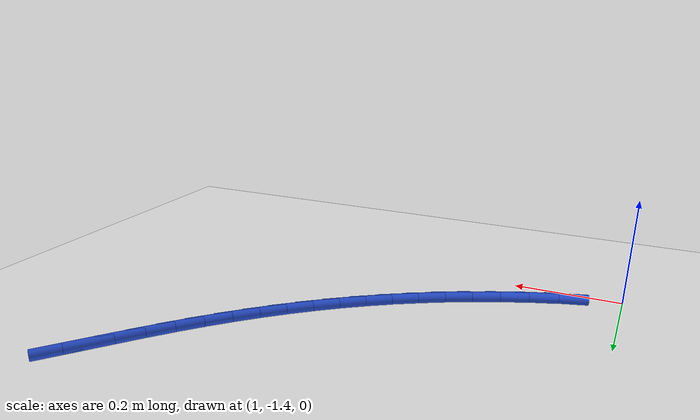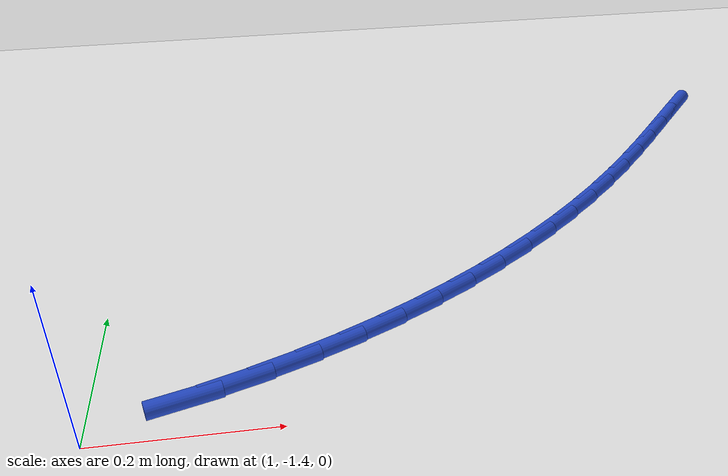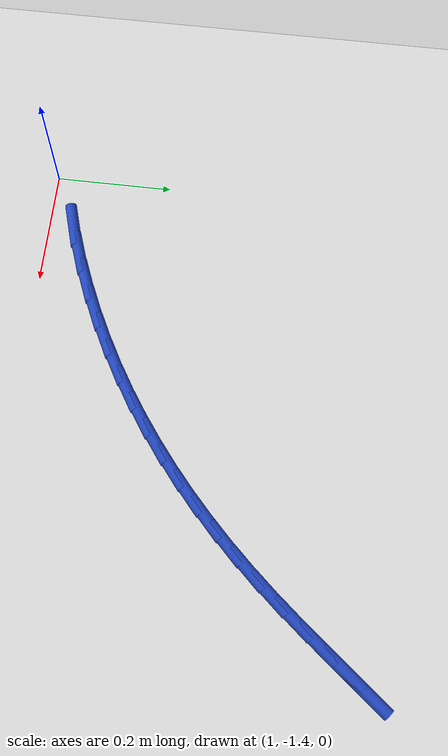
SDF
<sdf version="1.6">
 <world name="default">
  <model name="ground_plane">
   <static>1</static>
   <link name="link">
    <collision name="collision">
     <geometry><plane><normal>0 0 1</normal><size>100 100</size></plane></geometry>
     <surface><friction><ode><mu>100</mu><mu2>50</mu2></ode></friction></surface>
    </collision>
    <visual name="visual">
     <cast_shadows>0</cast_shadows>
     <geometry><plane><normal>0 0 1</normal><size>100 100</size></plane></geometry>
     <material>
      <script><uri>file://media/materials/scripts/gazebo.material</uri><name>Gazebo/WhiteGlow</name></script>
     </material>
    </visual>
   </link>
  </model>
  <model name="line">
   <link name="link_93">
    <pose>1.811123071716449 -0.8066129584355205 0.01 0 1.57 0.8965889323679145</pose>
    <collision name="collision">
     <geometry><cylinder><radius>0.01</radius><length>0.08</length></cylinder></geometry>
    </collision>
    <visual name="visual">
     <material>
      <script><name>Gazebo/Blue</name><uri>file://media/materials/scripts/gazebo.material</uri></script>
     </material>
     <geometry><cylinder><radius>0.01</radius><length>0.08</length></cylinder></geometry>
    </visual>
   </link>
   <link name="link_94">
    <pose>1.7796793295492397 -0.8459606552341223 0.01 0 1.57 0.8977207104698512</pose>
    <collision name="collision">
     <geometry><cylinder><radius>0.01</radius><length>0.08</length></cylinder></geometry>
    </collision>
    <visual name="visual">
     <material>
      <script><name>Gazebo/Blue</name><uri>file://media/materials/scripts/gazebo.material</uri></script>
     </material>
     <geometry><cylinder><radius>0.01</radius><length>0.08</length></cylinder></geometry>
    </visual>
   </link>
   <link name="link_95">
    <pose>1.7483244885506108 -0.8852882892945279 0.01 0 1.57 0.8882766905712431</pose>
    <collision name="collision">
     <geometry><cylinder><radius>0.01</radius><length>0.08</length></cylinder></geometry>
    </collision>
    <visual name="visual">
     <material>
      <script><name>Gazebo/Blue</name><uri>file://media/materials/scripts/gazebo.material</uri></script>
     </material>
     <geometry><cylinder><radius>0.01</radius><length>0.08</length></cylinder></geometry>
    </visual>
   </link>
   <link name="link_96">
    <pose>1.7167016635018457 -0.9241925433749459 0.01 0 1.57 0.8681086555003331</pose>
    <collision name="collision">
     <geometry><cylinder><radius>0.01</radius><length>0.08</length></cylinder></geometry>
    </collision>
    <visual name="visual">
     <material>
      <script><name>Gazebo/Blue</name><uri>file://media/materials/scripts/gazebo.material</uri></script>
     </material>
     <geometry><cylinder><radius>0.01</radius><length>0.08</length></cylinder></geometry>
    </visual>
   </link>
   <link name="link_97">
    <pose>1.6844540009546607 -0.9622701433061315 0.01 0 1.57 0.8389535748512726</pose>
    <collision name="collision">
     <geometry><cylinder><radius>0.01</radius><length>0.08</length></cylinder></geometry>
    </collision>
    <visual name="visual">
     <material>
      <script><name>Gazebo/Blue</name><uri>file://media/materials/scripts/gazebo.material</uri></script>
     </material>
     <geometry><cylinder><radius>0.01</radius><length>0.08</length></cylinder></geometry>
    </visual>
   </link>
   <link name="link_98">
    <pose>1.6512838247755741 -0.9991980441418683 0.01 0 1.57 0.806756025453646</pose>
    <collision name="collision">
     <geometry><cylinder><radius>0.01</radius><length>0.08</length></cylinder></geometry>
    </collision>
    <visual name="visual">
     <material>
      <script><name>Gazebo/Blue</name><uri>file://media/materials/scripts/gazebo.material</uri></script>
     </material>
     <geometry><cylinder><radius>0.01</radius><length>0.08</length></cylinder></geometry>
    </visual>
   </link>
   <link name="link_99">
    <pose>1.6170753842540297 -1.0348998450322717 0.01 0 1.57 0.7727713963493501</pose>
    <collision name="collision">
     <geometry><cylinder><radius>0.01</radius><length>0.08</length></cylinder></geometry>
    </collision>
    <visual name="visual">
     <material>
      <script><name>Gazebo/Blue</name><uri>file://media/materials/scripts/gazebo.material</uri></script>
     </material>
     <geometry><cylinder><radius>0.01</radius><length>0.08</length></cylinder></geometry>
    </visual>
   </link>
   <link name="link_100">
    <pose>1.581747774033884 -1.0693463864685033 0.01 0 1.57 0.7371421829267862</pose>
    <collision name="collision">
     <geometry><cylinder><radius>0.01</radius><length>0.08</length></cylinder></geometry>
    </collision>
    <visual name="visual">
     <material>
      <script><name>Gazebo/Blue</name><uri>file://media/materials/scripts/gazebo.material</uri></script>
     </material>
     <geometry><cylinder><radius>0.01</radius><length>0.08</length></cylinder></geometry>
    </visual>
   </link>
   <link name="link_101">
    <pose>1.5452200887589922 -1.1025085089417235 0.01 0 1.57 0.7000424575247742</pose>
    <collision name="collision">
     <geometry><cylinder><radius>0.01</radius><length>0.08</length></cylinder></geometry>
    </collision>
    <visual name="visual">
     <material>
      <script><name>Gazebo/Blue</name><uri>file://media/materials/scripts/gazebo.material</uri></script>
     </material>
     <geometry><cylinder><radius>0.01</radius><length>0.08</length></cylinder></geometry>
    </visual>
   </link>
   <link name="link_102">
    <pose>1.5074114230732096 -1.1343570529430953 0.01 0 1.57 0.6616762891711171</pose>
    <collision name="collision">
     <geometry><cylinder><radius>0.01</radius><length>0.08</length></cylinder></geometry>
    </collision>
    <visual name="visual">
     <material>
      <script><name>Gazebo/Blue</name><uri>file://media/materials/scripts/gazebo.material</uri></script>
     </material>
     <geometry><cylinder><radius>0.01</radius><length>0.08</length></cylinder></geometry>
    </visual>
   </link>
   <link name="link_103">
    <pose>1.468240871620393 -1.1648628589637806 0.01 0 1.57 0.622274417821732</pose>
    <collision name="collision">
     <geometry><cylinder><radius>0.01</radius><length>0.08</length></cylinder></geometry>
    </collision>
    <visual name="visual">
     <material>
      <script><name>Gazebo/Blue</name><uri>file://media/materials/scripts/gazebo.material</uri></script>
     </material>
     <geometry><cylinder><radius>0.01</radius><length>0.08</length></cylinder></geometry>
    </visual>
   </link>
   <link name="link_104">
    <pose>1.4276275290443972 -1.1939967674949399 0.01 0 1.57 0.582089200319888</pose>
    <collision name="collision">
     <geometry><cylinder><radius>0.01</radius><length>0.08</length></cylinder></geometry>
    </collision>
    <visual name="visual">
     <material>
      <script><name>Gazebo/Blue</name><uri>file://media/materials/scripts/gazebo.material</uri></script>
     </material>
     <geometry><cylinder><radius>0.01</radius><length>0.08</length></cylinder></geometry>
    </visual>
   </link>
   <link name="link_105">
    <pose>1.385490489989078 -1.221729619027736 0.01 0 1.57 0.5413880377799647</pose>
    <collision name="collision">
     <geometry><cylinder><radius>0.01</radius><length>0.08</length></cylinder></geometry>
    </collision>
    <visual name="visual">
     <material>
      <script><name>Gazebo/Blue</name><uri>file://media/materials/scripts/gazebo.material</uri></script>
     </material>
     <geometry><cylinder><radius>0.01</radius><length>0.08</length></cylinder></geometry>
    </visual>
   </link>
   <link name="link_106">
    <pose>1.3417488490982914 -1.24803225405333 0.01 0 1.57 0.5004456832692312</pose>
    <collision name="collision">
     <geometry><cylinder><radius>0.01</radius><length>0.08</length></cylinder></geometry>
    </collision>
    <visual name="visual">
     <material>
      <script><name>Gazebo/Blue</name><uri>file://media/materials/scripts/gazebo.material</uri></script>
     </material>
     <geometry><cylinder><radius>0.01</radius><length>0.08</length></cylinder></geometry>
    </visual>
   </link>
   <link name="link_107">
    <pose>1.296321701015893 -1.2728755130628846 0.01 0 1.57 0.45953597873217544</pose>
    <collision name="collision">
     <geometry><cylinder><radius>0.01</radius><length>0.08</length></cylinder></geometry>
    </collision>
    <visual name="visual">
     <material>
      <script><name>Gazebo/Blue</name><uri>file://media/materials/scripts/gazebo.material</uri></script>
     </material>
     <geometry><cylinder><radius>0.01</radius><length>0.08</length></cylinder></geometry>
    </visual>
   </link>
   <link name="link_108">
    <pose>1.2491281403857377 -1.2962302365475609 0.01 0 1.57 0.41892226512629277</pose>
    <collision name="collision">
     <geometry><cylinder><radius>0.01</radius><length>0.08</length></cylinder></geometry>
    </collision>
    <visual name="visual">
     <material>
      <script><name>Gazebo/Blue</name><uri>file://media/materials/scripts/gazebo.material</uri></script>
     </material>
     <geometry><cylinder><radius>0.01</radius><length>0.08</length></cylinder></geometry>
    </visual>
   </link>
   <link name="link_109">
    <pose>1.2000875778079612 -1.3180670429332837 0.01 0 1.57 0.3779875333157532</pose>
    <collision name="collision">
     <geometry><cylinder><radius>0.01</radius><length>0.08</length></cylinder></geometry>
    </collision>
    <visual name="visual">
     <material>
      <script><name>Gazebo/Blue</name><uri>file://media/materials/scripts/gazebo.material</uri></script>
     </material>
     <geometry><cylinder><radius>0.01</radius><length>0.08</length></cylinder></geometry>
    </visual>
   </link>
   <link name="link_110">
    <pose>1.1492862843969955 -1.338239275180476 0.01 0 1.57 0.3339170345581173</pose>
    <collision name="collision">
     <geometry><cylinder><radius>0.01</radius><length>0.08</length></cylinder></geometry>
    </collision>
    <visual name="visual">
     <material>
      <script><name>Gazebo/Blue</name><uri>file://media/materials/scripts/gazebo.material</uri></script>
     </material>
     <geometry><cylinder><radius>0.01</radius><length>0.08</length></cylinder></geometry>
    </visual>
   </link>
   <link name="link_111">
    <pose>1.0972510020960398 -1.3562906977869704 0.01 0 1.57 0.28487165987950414</pose>
    <collision name="collision">
     <geometry><cylinder><radius>0.01</radius><length>0.08</length></cylinder></geometry>
    </collision>
    <visual name="visual">
     <material>
      <script><name>Gazebo/Blue</name><uri>file://media/materials/scripts/gazebo.material</uri></script>
     </material>
     <geometry><cylinder><radius>0.01</radius><length>0.08</length></cylinder></geometry>
    </visual>
   </link>
  </model>
 </world>
</sdf>
